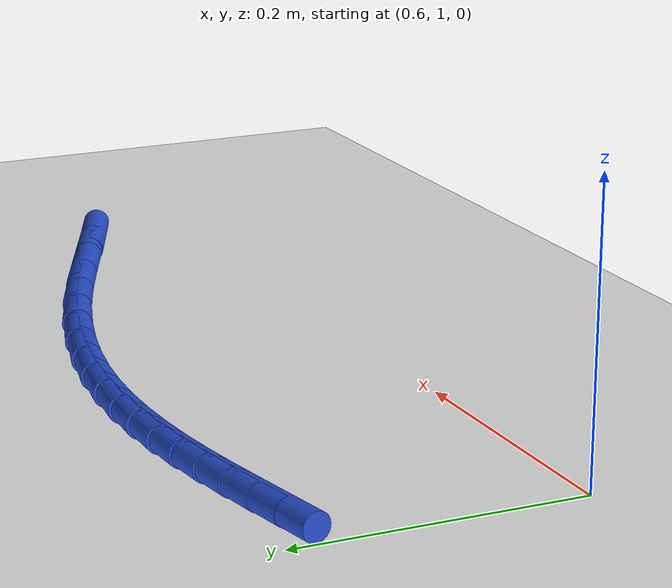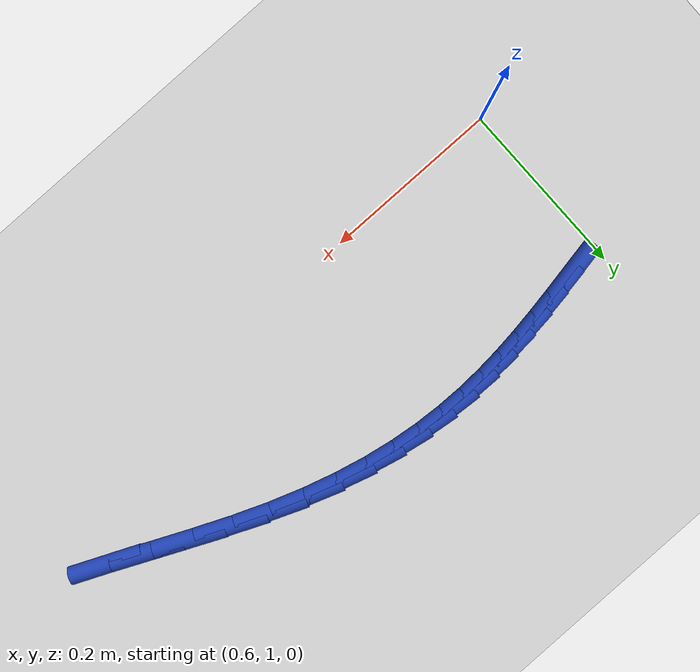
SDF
<sdf version="1.6">
 <world name="default">
  <model name="ground_plane">
   <static>1</static>
   <link name="link">
    <collision name="collision">
     <geometry><plane><normal>0 0 1</normal><size>100 100</size></plane></geometry>
     <surface><friction><ode><mu>100</mu><mu2>50</mu2></ode></friction></surface>
    </collision>
    <visual name="visual">
     <cast_shadows>0</cast_shadows>
     <geometry><plane><normal>0 0 1</normal><size>100 100</size></plane></geometry>
     <material>
      <script><uri>file://media/materials/scripts/gazebo.material</uri><name>Gazebo/WhiteGlow</name></script>
     </material>
    </visual>
   </link>
  </model>
  <model name="line">
   <link name="link_54">
    <pose>0.6408708285580935 1.186895538138761 0.01 0 1.57 0.18910720785775761</pose>
    <collision name="collision">
     <geometry><cylinder><radius>0.01</radius><length>0.08</length></cylinder></geometry>
    </collision>
    <visual name="visual">
     <material>
      <script><name>Gazebo/Blue</name><uri>file://media/materials/scripts/gazebo.material</uri></script>
     </material>
     <geometry><cylinder><radius>0.01</radius><length>0.08</length></cylinder></geometry>
    </visual>
   </link>
   <link name="link_55">
    <pose>0.6685882123869992 1.1922004841569647 0.01 0 1.57 0.1767876970871028</pose>
    <collision name="collision">
     <geometry><cylinder><radius>0.01</radius><length>0.08</length></cylinder></geometry>
    </collision>
    <visual name="visual">
     <material>
      <script><name>Gazebo/Blue</name><uri>file://media/materials/scripts/gazebo.material</uri></script>
     </material>
     <geometry><cylinder><radius>0.01</radius><length>0.08</length></cylinder></geometry>
    </visual>
   </link>
   <link name="link_56">
    <pose>0.6960576500471306 1.1971079756917575 0.01 0 1.57 0.15539127253815693</pose>
    <collision name="collision">
     <geometry><cylinder><radius>0.01</radius><length>0.08</length></cylinder></geometry>
    </collision>
    <visual name="visual">
     <material>
      <script><name>Gazebo/Blue</name><uri>file://media/materials/scripts/gazebo.material</uri></script>
     </material>
     <geometry><cylinder><radius>0.01</radius><length>0.08</length></cylinder></geometry>
    </visual>
   </link>
   <link name="link_57">
    <pose>0.7234930921494731 1.2014058525870246 0.01 0 1.57 0.12521693846274587</pose>
    <collision name="collision">
     <geometry><cylinder><radius>0.01</radius><length>0.08</length></cylinder></geometry>
    </collision>
    <visual name="visual">
     <material>
      <script><name>Gazebo/Blue</name><uri>file://media/materials/scripts/gazebo.material</uri></script>
     </material>
     <geometry><cylinder><radius>0.01</radius><length>0.08</length></cylinder></geometry>
    </visual>
   </link>
   <link name="link_58">
    <pose>0.7511084893050125 1.2048819546866523 0.01 0 1.57 0.08697133691234682</pose>
    <collision name="collision">
     <geometry><cylinder><radius>0.01</radius><length>0.08</length></cylinder></geometry>
    </collision>
    <visual name="visual">
     <material>
      <script><name>Gazebo/Blue</name><uri>file://media/materials/scripts/gazebo.material</uri></script>
     </material>
     <geometry><cylinder><radius>0.01</radius><length>0.08</length></cylinder></geometry>
    </visual>
   </link>
   <link name="link_59">
    <pose>0.7791177921247345 1.2073241218345265 0.01 0 1.57 0.04177131289076687</pose>
    <collision name="collision">
     <geometry><cylinder><radius>0.01</radius><length>0.08</length></cylinder></geometry>
    </collision>
    <visual name="visual">
     <material>
      <script><name>Gazebo/Blue</name><uri>file://media/materials/scripts/gazebo.material</uri></script>
     </material>
     <geometry><cylinder><radius>0.01</radius><length>0.08</length></cylinder></geometry>
    </visual>
   </link>
   <link name="link_60">
    <pose>0.8077349512196238 1.2085201938745327 0.01 0 1.57 -0.008905757513272314</pose>
    <collision name="collision">
     <geometry><cylinder><radius>0.01</radius><length>0.08</length></cylinder></geometry>
    </collision>
    <visual name="visual">
     <material>
      <script><name>Gazebo/Blue</name><uri>file://media/materials/scripts/gazebo.material</uri></script>
     </material>
     <geometry><cylinder><radius>0.01</radius><length>0.08</length></cylinder></geometry>
    </visual>
   </link>
   <link name="link_61">
    <pose>0.837173917200667 1.208258010650557 0.01 0 1.57 -0.06333163733935887</pose>
    <collision name="collision">
     <geometry><cylinder><radius>0.01</radius><length>0.08</length></cylinder></geometry>
    </collision>
    <visual name="visual">
     <material>
      <script><name>Gazebo/Blue</name><uri>file://media/materials/scripts/gazebo.material</uri></script>
     </material>
     <geometry><cylinder><radius>0.01</radius><length>0.08</length></cylinder></geometry>
    </visual>
   </link>
   <link name="link_62">
    <pose>0.8676486406788484 1.2063254120064846 0.01 0 1.57 -0.11968504326022786</pose>
    <collision name="collision">
     <geometry><cylinder><radius>0.01</radius><length>0.08</length></cylinder></geometry>
    </collision>
    <visual name="visual">
     <material>
      <script><name>Gazebo/Blue</name><uri>file://media/materials/scripts/gazebo.material</uri></script>
     </material>
     <geometry><cylinder><radius>0.01</radius><length>0.08</length></cylinder></geometry>
    </visual>
   </link>
   <link name="link_63">
    <pose>0.8993730722651547 1.2025102377862014 0.01 0 1.57 -0.17622599723135676</pose>
    <collision name="collision">
     <geometry><cylinder><radius>0.01</radius><length>0.08</length></cylinder></geometry>
    </collision>
    <visual name="visual">
     <material>
      <script><name>Gazebo/Blue</name><uri>file://media/materials/scripts/gazebo.material</uri></script>
     </material>
     <geometry><cylinder><radius>0.01</radius><length>0.08</length></cylinder></geometry>
    </visual>
   </link>
   <link name="link_64">
    <pose>0.9325611625705703 1.1966003278335937 0.01 0 1.57 -0.23144697538883593</pose>
    <collision name="collision">
     <geometry><cylinder><radius>0.01</radius><length>0.08</length></cylinder></geometry>
    </collision>
    <visual name="visual">
     <material>
      <script><name>Gazebo/Blue</name><uri>file://media/materials/scripts/gazebo.material</uri></script>
     </material>
     <geometry><cylinder><radius>0.01</radius><length>0.08</length></cylinder></geometry>
    </visual>
   </link>
   <link name="link_65">
    <pose>0.9674268622060811 1.188383521992547 0.01 0 1.57 -0.284170019272757</pose>
    <collision name="collision">
     <geometry><cylinder><radius>0.01</radius><length>0.08</length></cylinder></geometry>
    </collision>
    <visual name="visual">
     <material>
      <script><name>Gazebo/Blue</name><uri>file://media/materials/scripts/gazebo.material</uri></script>
     </material>
     <geometry><cylinder><radius>0.01</radius><length>0.08</length></cylinder></geometry>
    </visual>
   </link>
   <link name="link_66">
    <pose>1.0041841217826732 1.1776476601069468 0.01 0 1.57 -0.33357930208601577</pose>
    <collision name="collision">
     <geometry><cylinder><radius>0.01</radius><length>0.08</length></cylinder></geometry>
    </collision>
    <visual name="visual">
     <material>
      <script><name>Gazebo/Blue</name><uri>file://media/materials/scripts/gazebo.material</uri></script>
     </material>
     <geometry><cylinder><radius>0.01</radius><length>0.08</length></cylinder></geometry>
    </visual>
   </link>
   <link name="link_67">
    <pose>1.0430468919113314 1.1641805820206792 0.01 0 1.57 -0.3787149812527351</pose>
    <collision name="collision">
     <geometry><cylinder><radius>0.01</radius><length>0.08</length></cylinder></geometry>
    </collision>
    <visual name="visual">
     <material>
      <script><name>Gazebo/Blue</name><uri>file://media/materials/scripts/gazebo.material</uri></script>
     </material>
     <geometry><cylinder><radius>0.01</radius><length>0.08</length></cylinder></geometry>
    </visual>
   </link>
   <link name="link_68">
    <pose>1.0841842123855288 1.1478110768534633 0.01 0 1.57 -0.41126324615828164</pose>
    <collision name="collision">
     <geometry><cylinder><radius>0.01</radius><length>0.08</length></cylinder></geometry>
    </collision>
    <visual name="visual">
     <material>
      <script><name>Gazebo/Blue</name><uri>file://media/materials/scripts/gazebo.material</uri></script>
     </material>
     <geometry><cylinder><radius>0.01</radius><length>0.08</length></cylinder></geometry>
    </visual>
   </link>
   <link name="link_69">
    <pose>1.1268484326085306 1.1292037637036618 0.01 0 1.57 -0.4274422393446067</pose>
    <collision name="collision">
     <geometry><cylinder><radius>0.01</radius><length>0.08</length></cylinder></geometry>
    </collision>
    <visual name="visual">
     <material>
      <script><name>Gazebo/Blue</name><uri>file://media/materials/scripts/gazebo.material</uri></script>
     </material>
     <geometry><cylinder><radius>0.01</radius><length>0.08</length></cylinder></geometry>
    </visual>
   </link>
   <link name="link_70">
    <pose>1.1694354945998873 1.1098041261500406 0.01 0 1.57 -0.42942003754167546</pose>
    <collision name="collision">
     <geometry><cylinder><radius>0.01</radius><length>0.08</length></cylinder></geometry>
    </collision>
    <visual name="visual">
     <material>
      <script><name>Gazebo/Blue</name><uri>file://media/materials/scripts/gazebo.material</uri></script>
     </material>
     <geometry><cylinder><radius>0.01</radius><length>0.08</length></cylinder></geometry>
    </visual>
   </link>
   <link name="link_71">
    <pose>1.2103085036542227 1.091087587999155 0.01 0 1.57 -0.41558499335434157</pose>
    <collision name="collision">
     <geometry><cylinder><radius>0.01</radius><length>0.08</length></cylinder></geometry>
    </collision>
    <visual name="visual">
     <material>
      <script><name>Gazebo/Blue</name><uri>file://media/materials/scripts/gazebo.material</uri></script>
     </material>
     <geometry><cylinder><radius>0.01</radius><length>0.08</length></cylinder></geometry>
    </visual>
   </link>
  </model>
 </world>
</sdf>
